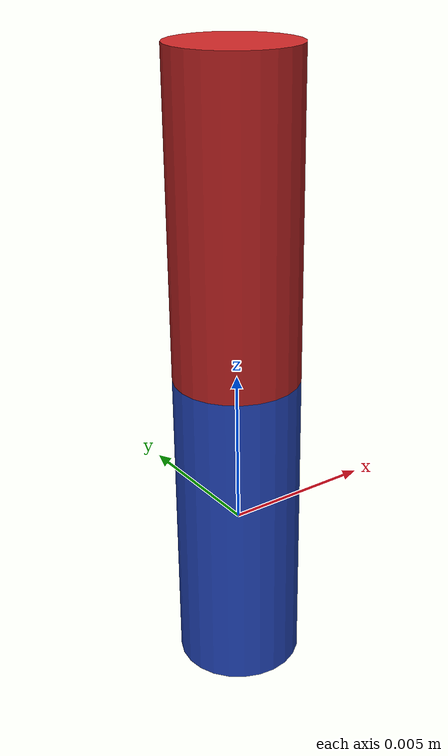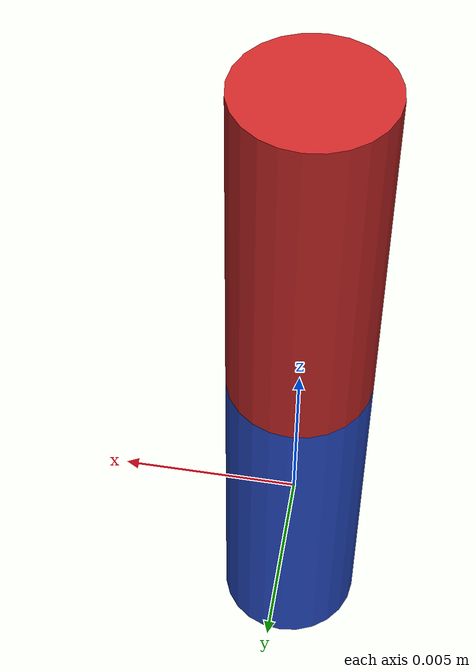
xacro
<?xml version="1.0"?>
<robot xmlns:xacro="http://www.ros.org/wiki/xacro" name="rope">

<xacro:property name="length" value="0.01" />
<xacro:property name="radius" value="0.002" />
<xacro:property name="link_name" value="rope_seg_"/>
<xacro:property name="mass" value="0.01"/>

<xacro:property name="effort" value="5"/>
<xacro:property name="velocity" value="6.28"/>
<xacro:property name="lower" value="-0.785"/>
<xacro:property name="upper" value="0.785"/>
<xacro:property name="damping" value="2"/>
<xacro:property name="friction" value="0.1"/>

<xacro:property name="axis_x" value="1"/>
<xacro:property name="axis_y" value="0"/>
<xacro:property name="axis_z" value="0"/>

<xacro:macro name="link_description" params="link_number color">
        <link name="${link_name}${link_number}">
                <visual>
                        <geometry>
                                <cylinder length="${length}" radius="${radius}"/>
                        </geometry>
                </visual>
                <collision>
                        <geometry>
                                <cylinder length="${length}" radius="${radius}"/>
                        </geometry>
                </collision>
                <inertial>
                        <mass value="${mass}" />
                        <inertia ixx="1.0" ixy="0.0" ixz="0.0"
                                 iyy="1.0" iyz="0.0"
                                 izz="1.0" />
                </inertial>
        </link>
                <gazebo reference="${link_name}${link_number}">
                        <material>Gazebo/${color}</material>
                </gazebo>
</xacro:macro>

<xacro:macro name="joint_description" params="joint_number parent_link child_link">
        <joint name="j${joint_number}" type="revolute">
                <limit effort="${effort}" velocity="${velocity}" lower="${lower}" upper="${upper}"/>
                <parent link="${link_name}${parent_link}"/>
                <child link="${link_name}${child_link}"/>
                <origin xyz="0 0 ${length}"/>
                <axis xyz= "${axis_x} ${axis_y} ${axis_z}"/>
                <dynamics damping="${damping}" friction="${friction}"/>
        </joint>
</xacro:macro>

<xacro:link_description link_number="1" color="Blue"/>
<xacro:link_description link_number="2" color="Red"/>
<xacro:joint_description joint_number="1" parent_link="1" child_link="2" />

</robot>
